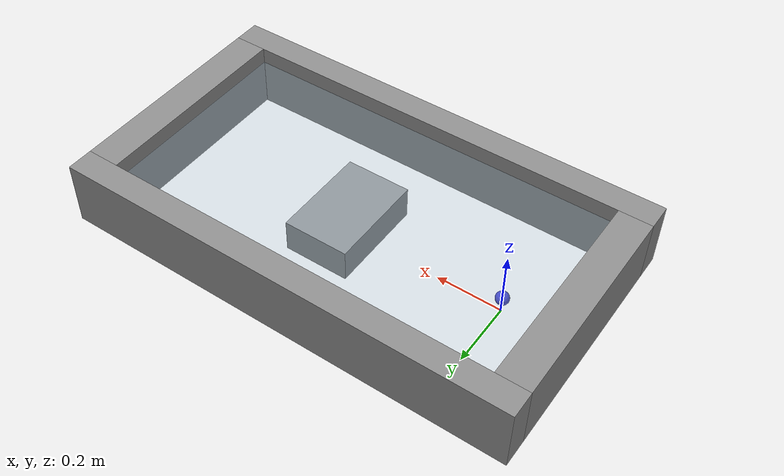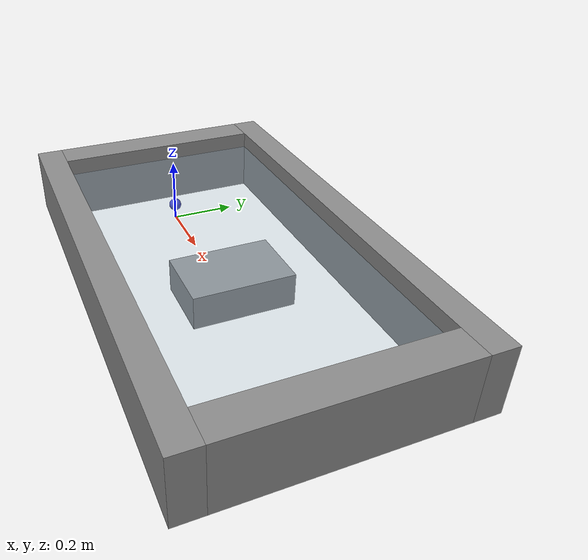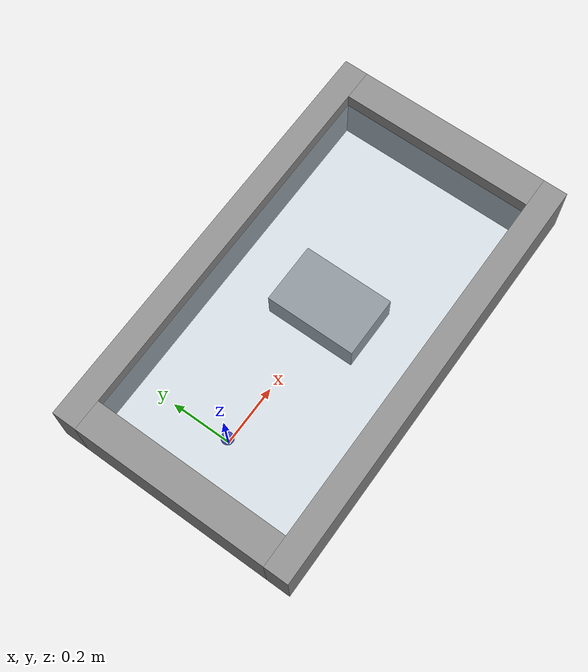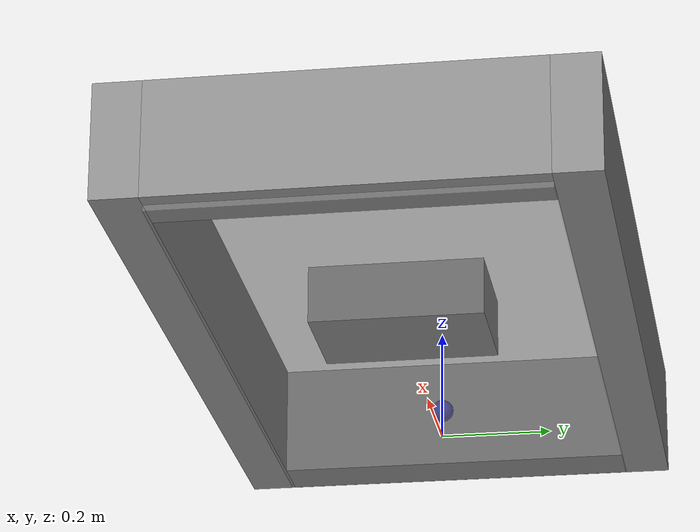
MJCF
<mujoco>
  <option timestep="0.01" integrator="RK4" />
  <worldbody>
    <light pos="0 0 1.5" dir="0 0 -1" directional="true" />
    <geom name="floor" type="box" pos="0.45 0 -0.005" size="0.67 0.32 0.005"
      material="hazy_floor" friction=".5 0.005 0.001"
      priority="2" condim="4" />
  </worldbody>

  <worldbody>

    <body name="ball" pos=".0 0 .05">
      <geom name="gball_0" type="sphere" size="0.02" mass="5." material="BallMat"
        friction=".5 0.005 0.001 " condim="4" />
      <site name="sensor_ball" />
      <joint name="joint_x" type="slide" pos="0 0 0" axis="1 0 0" />
      <joint name="joint_y" type="slide" pos="0 0 0" axis="0 1 0" />
      <joint name="joint_z" type="slide" pos="0 0 0" axis="0 0 1"
        limited="true" range="0 0.15" damping="60" />
    </body>

    <body name="wall_3" pos="0.5 0.0 .05">
      <geom name="wall_3" type="box" size="0.1 0.15 0.05" mass=".1" material="static" condim="4" />
    </body>

    <body name="case" pos="0 0 0.1">
      <geom name="gcase_a" type="box" size="0.05 0.32 0.1" pos="-.2 0 0" material="static" />
      <geom name="gcase_b" type="box" size="0.05 0.32 0.1" pos="1.1 0 0" material="static" />
      <geom name="gcase_c" type="box" size="0.7 0.04 0.1" pos="0.45 .36 0" material="static" />
      <geom name="gcase_d" type="box" size="0.7 0.04 0.1" pos="0.45 -.36 0" material="static" />
    </body>

    <!-- Translucent tank volume; forces are supplied by lib/fluid.py. -->
    <body name="water" pos="0.45 0 0.075">
      <!-- Filled from the floor to z=0.15: above wall_3, below the case walls. -->
      <geom name="water_surface" type="box" size="0.67 0.32 0.075"
        rgba="0.58 0.72 0.82 0.22" contype="0" conaffinity="0" />
    </body>
    <site name="underwater_target" type="sphere" pos="0.9 -0.22 0.06"
      size="0.01" rgba="0.1 1 1 0.55" />

  </worldbody>

  <actuator>
    <motor name="actuator_x" joint="joint_x" gear="15" ctrllimited="true" ctrlrange="-1 1" />
    <motor name="actuator_y" joint="joint_y" gear="15" ctrllimited="true" ctrlrange="-1 1" />
    <motor name="actuator_z" joint="joint_z" gear="80" ctrllimited="true" ctrlrange="-1 1" />
  </actuator>

  <asset>
    <!-- Materials for visualization -->
    <material name="MatPlane" rgba="0.8 0.9 0.8 1" />
    <material name="movable" rgba="0.94 1.0 0.0 1" />
    <material name="static" rgba="0.55 0.55 0.55 1" />
    <material name="hazy_floor" rgba="0.55 0.55 0.55 0.55" />
    <material name="BallMat" rgba="0.2 0.2 0.8 1" />

    <texture type="skybox" builtin="gradient" rgb1="0.3 0.5 0.7" rgb2="0 0 0" width="512" height="3072" />
    <texture type="2d" name="groundplane" builtin="checker" mark="edge" rgb1="0.2 0.3 0.4"
      rgb2="0.1 0.2 0.3"
      markrgb="0.8 0.8 0.8" width="300" height="300" />
    <material name="groundplane" texture="groundplane" texuniform="true" texrepeat="5 5"
      reflectance="0.2" />
  </asset>

  <visual>
    <headlight diffuse="0.6 0.6 0.6" ambient="0.3 0.3 0.3" specular="0 0 0" />
    <rgba haze="0.15 0.25 0.35 1" />
    <global azimuth="60" elevation="-20" />
  </visual>

  <sensor>
    <velocimeter name="sensor_ball" site="sensor_ball" />
  </sensor>

</mujoco>
